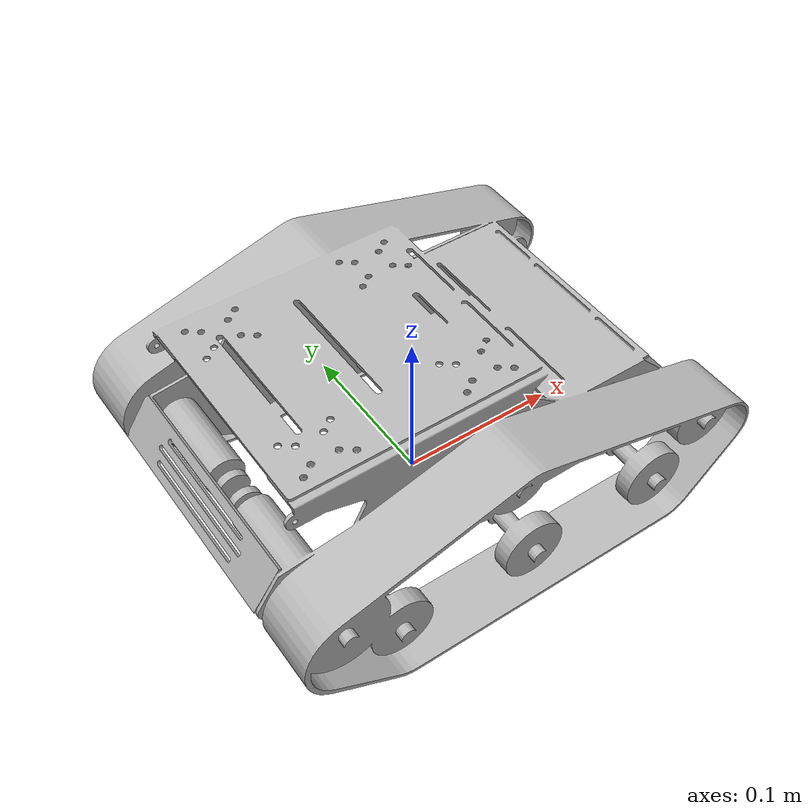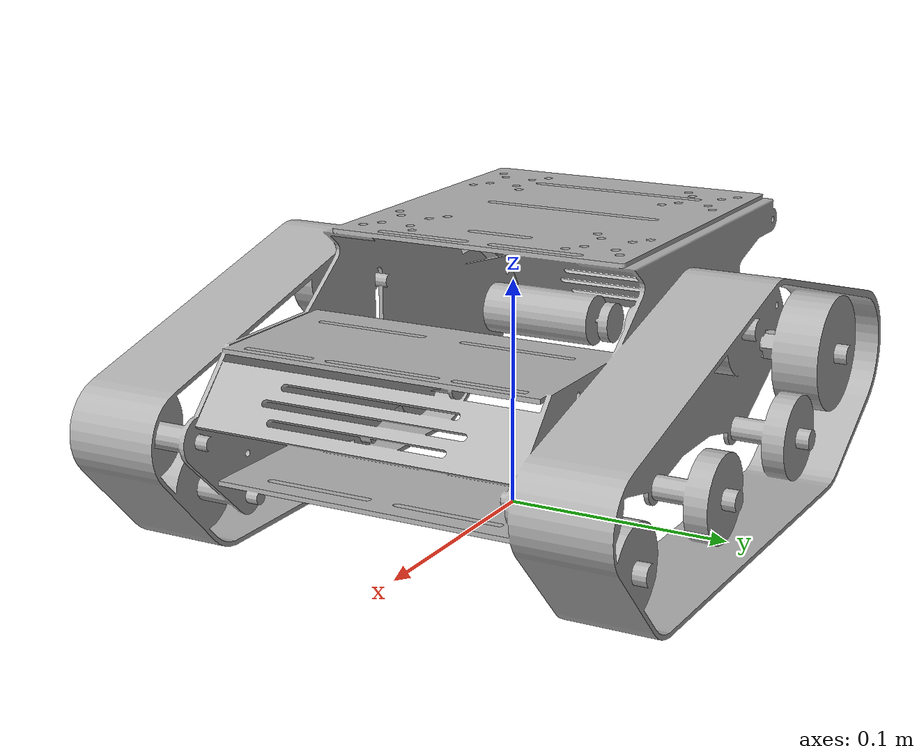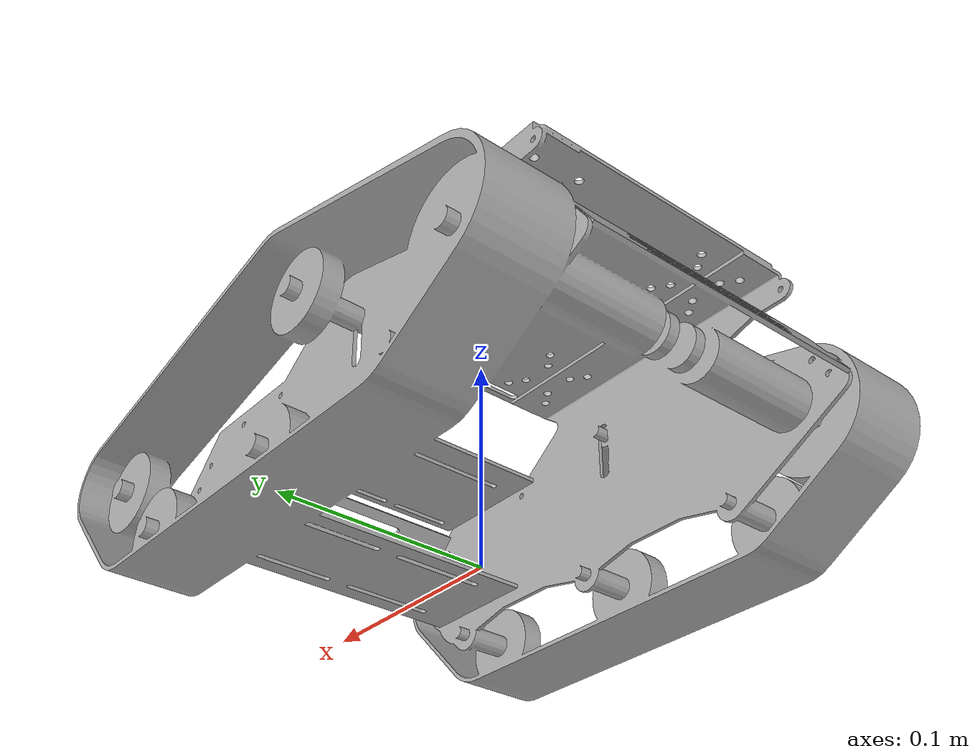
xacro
<?xml version="1.0" ?>
<robot xmlns:xacro="http://ros.org/wiki/xacro">

  <xacro:include filename="materials.xacro"/>
  <xacro:include filename="inertial_macros.xacro"/>

  <!-- Robot's base properties -->
  <xacro:property name="base_length" value="0.27"/>
  <xacro:property name="base_width" value="0.145"/>
  <xacro:property name="base_height" value="0.085"/>

  <!-- Robot's wheel properties -->
  <xacro:property name="wheel_radius" value="0.03"/>
  <xacro:property name="wheel_height" value="0.045"/>
  <xacro:property name="wheel_mass" value="0.01"/>

  <!-- Distance between centre of wheel and robot base -->
  <xacro:property name="wheel_zoff" value="0.01"/>

  <!-- BASE_FOOTPRINT LINK -->

  <link name="base_footprint"/>

  <!-- CHASSIS LINK -->

<joint name="base_joint" type="fixed">
  <parent link="base_footprint"/>
  <child link="base_link"/>
</joint>

<link name="base_link">
  <visual>
    <origin xyz="0 0 0" rpy="0 0 0"/>
    <geometry>
      <mesh filename="package://raspitank_description/meshes/chassis.stl" scale="0.001 0.001 0.001"/>
    </geometry>
    <material name="silver"/>
  </visual>
  <collision>
    <origin xyz="0.087375 0 0.065" rpy="0 0 0"/>
    <geometry>
      <box size="${base_length} ${base_width} ${base_height}"/>
    </geometry>
  </collision>

  <xacro:box_inertia mass="1.0" length="${base_length}" width="${base_width}" height="${base_height}">
      <origin xyz="0.078 0 0.065" rpy="0 0 0"/>
    </xacro:box_inertia>
</link>

<gazebo reference="base_link">
    <material>Gazebo/White</material>
</gazebo>

<!-- LEFT BACK WHEEL -->

<joint name="left_wheel_joint" type="continuous">
  <parent link="base_link"/>
  <child link="left_wheel"/>
  <origin xyz="0.01 0.1 0.03" rpy="0 0 0"/>
  <axis xyz="0.0 1.0 0.0"/>
</joint>

<link name="left_wheel">
  <collision>
    <origin xyz="0 0 0" rpy="0 0 0"/>
    <geometry>
      <sphere radius="${wheel_radius}"/>
    </geometry>
  </collision>

  <xacro:cylinder_inertia mass="${wheel_mass}" length="${wheel_height}" radius="${wheel_radius}">
    <origin xyz="0 0 0" rpy="0 0 0"/>
  </xacro:cylinder_inertia>
</link>

<gazebo reference="left_wheel">
    <material>Gazebo/Black</material>
</gazebo>

<!-- RIGHT BACK WHEEL -->

<joint name="right_wheel_joint" type="continuous">
  <parent link="base_link"/>
  <child link="right_wheel"/>
  <origin xyz="0.01 -0.1 0.03" rpy="0 0 0"/>
  <axis xyz="0.0 1.0 0.0"/>
</joint>

<link name="right_wheel">
  <collision>
    <origin xyz="0 0 0" rpy="0 0 0"/>
    <geometry>
      <sphere radius="${wheel_radius}"/>
    </geometry>
  </collision>

  <xacro:cylinder_inertia mass="${wheel_mass}" length="${wheel_height}" radius="${wheel_radius}">
    <origin xyz="0 0 0" rpy="0 0 0"/>
  </xacro:cylinder_inertia>
</link>

<gazebo reference="right_wheel">
    <material>Gazebo/Black</material>
</gazebo>

<!-- Caster wheel -->
  <link name="caster_wheel">
    <collision>
      <origin xyz="0.096 0 0.015" rpy="0 0 0"/>
      <geometry>
        <sphere radius="0.015"/>
      </geometry>
    </collision>

    <xacro:sphere_inertia mass="0.033" radius="0.025">
      <origin xyz="0.096 0 0.015" rpy="0 0 0"/>
    </xacro:sphere_inertia>
  </link>

  <joint name="caster_wheel_joint" type="fixed">
    <parent link="base_link"/>
    <child link="caster_wheel"/>
    <origin xyz="0.096 0 0" rpy="0 0 0"/>
  </joint>

  <gazebo reference="caster_wheel">
    <mu1 value="0.001"/>
    <mu2 value="0.001"/>
  </gazebo>

</robot>

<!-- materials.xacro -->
<robot name="raspitank" xmlns:xacro="http://www.ros.org/wiki/xacro" >

<material name="silver">
  <color rgba="0.7 0.7 0.7 1"/>
</material>

<material name="white">
    <color rgba="1 1 1 1" />
</material>

<material name="orange">
    <color rgba="1 0.3 0.1 1"/>
</material>

<material name="blue">
    <color rgba="0.2 0.2 1 1"/>
</material>

<material name="black">
    <color rgba="0 0 0 1"/>
</material>

<material name="red">
    <color rgba="1 0 0 1"/>
</material>

</robot>
